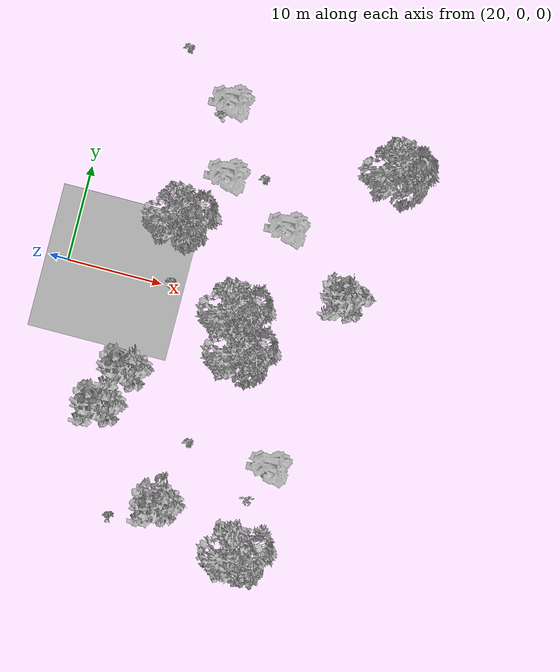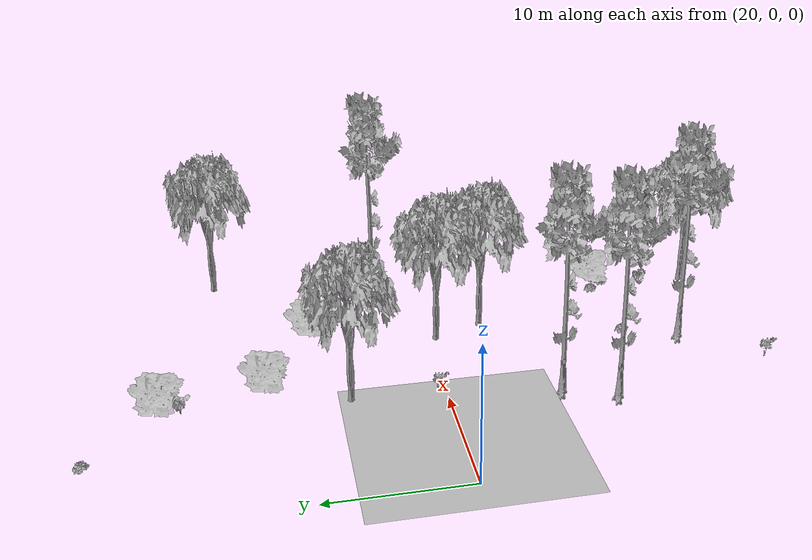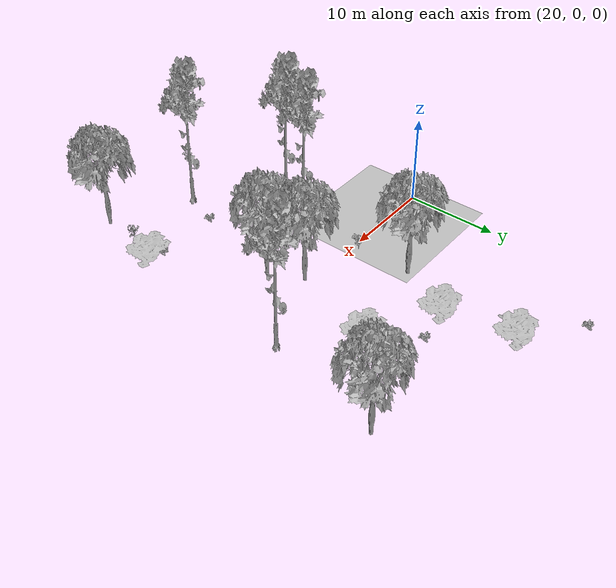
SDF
<sdf version="1.7">
 <world name="default">
  <model name="ground_plane">
   <static>1</static>
   <link name="link">
    <collision name="collision">
     <pose>25.0 0 0 0 -0 0</pose>
     <geometry><plane><normal>0 0 1</normal><size>50 50</size></plane></geometry>
     <surface><contact><ode><min_depth>0.01</min_depth><max_vel>0</max_vel></ode></contact></surface>
    </collision>
    <visual name="grass">
     <pose>25.0 0 0 0 -0 0</pose>
     <cast_shadows>0</cast_shadows>
     <geometry>
      <mesh>
       <scale>0.2731578947368421 0.2802702702702703 0.1</scale>
       <uri>file://grass_plane/meshes/grass_plane.dae</uri>
      </mesh>
     </geometry>
    </visual>
   </link>
  </model>
  <model name="Tree 0">
   <static>1</static>
   <pose>29.42567704624801 -8.101455197510514 0 1.57079 -0 0</pose>
   <link name="link">
    <collision name="collision">
     <geometry><mesh><scale>3.5 5 3.5</scale><uri>model://tree_9/meshes/tree_9.obj</uri></mesh></geometry>
    </collision>
    <visual name="visual">
     <geometry><mesh><scale>3.5 5 3.5</scale><uri>model://tree_9/meshes/tree_9.obj</uri></mesh></geometry>
    </visual>
   </link>
  </model>
  <model name="Tree 2">
   <static>1</static>
   <pose>41.17567704624801 8.565211469156154 0 1.57079 -0 0</pose>
   <link name="link">
    <collision name="collision">
     <geometry><mesh><scale>3 2 3</scale><uri>model://tree_3/meshes/tree_3.obj</uri></mesh></geometry>
    </collision>
    <visual name="visual">
     <geometry><mesh><scale>3 2 3</scale><uri>model://tree_3/meshes/tree_3.obj</uri></mesh></geometry>
    </visual>
   </link>
  </model>
  <model name="Tree 4">
   <static>1</static>
   <pose>35.30067704624801 -19.212566308621625 0 1.57079 -0 0</pose>
   <link name="link">
    <collision name="collision">
     <geometry><mesh><scale>3.5 5 3.5</scale><uri>model://tree_9/meshes/tree_9.obj</uri></mesh></geometry>
    </collision>
    <visual name="visual">
     <geometry><mesh><scale>3.5 5 3.5</scale><uri>model://tree_9/meshes/tree_9.obj</uri></mesh></geometry>
    </visual>
   </link>
  </model>
  <model name="Tree 6">
   <static>1</static>
   <pose>47.05067704624801 3.0096559136006 0 1.57079 -0 0</pose>
   <link name="link">
    <collision name="collision">
     <geometry><mesh><scale>3.5 5 3.5</scale><uri>model://tree_9/meshes/tree_9.obj</uri></mesh></geometry>
    </collision>
    <visual name="visual">
     <geometry><mesh><scale>3.5 5 3.5</scale><uri>model://tree_9/meshes/tree_9.obj</uri></mesh></geometry>
    </visual>
   </link>
  </model>
  <model name="Tree 8">
   <static>1</static>
   <pose>32.36317704624801 19.67632258026726 0 1.57079 -0 0</pose>
   <link name="link">
    <collision name="collision">
     <geometry><mesh><scale>3 2 3</scale><uri>model://tree_3/meshes/tree_3.obj</uri></mesh></geometry>
    </collision>
    <visual name="visual">
     <geometry><mesh><scale>3 2 3</scale><uri>model://tree_3/meshes/tree_3.obj</uri></mesh></geometry>
    </visual>
   </link>
  </model>
  <model name="Tree 10">
   <static>1</static>
   <pose>44.11317704624801 -22.916270012325327 0 1.57079 -0 0</pose>
   <link name="link">
    <collision name="collision">
     <geometry><mesh><scale>3.5 5 3.5</scale><uri>model://tree_2/meshes/tree_2.obj</uri></mesh></geometry>
    </collision>
    <visual name="visual">
     <geometry><mesh><scale>3.5 5 3.5</scale><uri>model://tree_2/meshes/tree_2.obj</uri></mesh></geometry>
    </visual>
   </link>
  </model>
  <model name="Tree 12">
   <static>1</static>
   <pose>38.23817704624801 -0.6940477901031059 0 1.57079 -0 0</pose>
   <link name="link">
    <collision name="collision">
     <geometry><mesh><scale>3.5 5 3.5</scale><uri>model://tree_2/meshes/tree_2.obj</uri></mesh></geometry>
    </collision>
    <visual name="visual">
     <geometry><mesh><scale>3.5 5 3.5</scale><uri>model://tree_2/meshes/tree_2.obj</uri></mesh></geometry>
    </visual>
   </link>
  </model>
  <model name="Tree 14">
   <static>1</static>
   <pose>49.98817704624801 15.972618876563551 0 1.57079 -0 0</pose>
   <link name="link">
    <collision name="collision">
     <geometry><mesh><scale>3.5 5 3.5</scale><uri>model://tree_2/meshes/tree_2.obj</uri></mesh></geometry>
    </collision>
    <visual name="visual">
     <geometry><mesh><scale>3.5 5 3.5</scale><uri>model://tree_2/meshes/tree_2.obj</uri></mesh></geometry>
    </visual>
   </link>
  </model>
  <model name="Tree 16">
   <static>1</static>
   <pose>27.95692704624801 -11.805158901214217 0 1.57079 -0 0</pose>
   <link name="link">
    <collision name="collision">
     <geometry><mesh><scale>3.5 5 3.5</scale><uri>model://tree_9/meshes/tree_9.obj</uri></mesh></geometry>
    </collision>
    <visual name="visual">
     <geometry><mesh><scale>3.5 5 3.5</scale><uri>model://tree_9/meshes/tree_9.obj</uri></mesh></geometry>
    </visual>
   </link>
  </model>
  <model name="Tree 18">
   <static>1</static>
   <pose>39.70692704624801 -4.397751493806808 0 1.57079 -0 0</pose>
   <link name="link">
    <collision name="collision">
     <geometry><mesh><scale>3.5 5 3.5</scale><uri>model://tree_2/meshes/tree_2.obj</uri></mesh></geometry>
    </collision>
    <visual name="visual">
     <geometry><mesh><scale>3.5 5 3.5</scale><uri>model://tree_2/meshes/tree_2.obj</uri></mesh></geometry>
    </visual>
   </link>
  </model>
  <model name="Tree 20">
   <static>1</static>
   <pose>33.83192704624801 12.268915172859856 0 1.57079 -0 0</pose>
   <link name="link">
    <collision name="collision">
     <geometry><mesh><scale>3 2 3</scale><uri>model://tree_3/meshes/tree_3.obj</uri></mesh></geometry>
    </collision>
    <visual name="visual">
     <geometry><mesh><scale>3 2 3</scale><uri>model://tree_3/meshes/tree_3.obj</uri></mesh></geometry>
    </visual>
   </link>
  </model>
  <model name="Tree 22">
   <static>1</static>
   <pose>45.58192704624801 -15.508862604917923 0 1.57079 -0 0</pose>
   <link name="link">
    <collision name="collision">
     <geometry><mesh><scale>3 2 3</scale><uri>model://tree_3/meshes/tree_3.obj</uri></mesh></geometry>
    </collision>
    <visual name="visual">
     <geometry><mesh><scale>3 2 3</scale><uri>model://tree_3/meshes/tree_3.obj</uri></mesh></geometry>
    </visual>
   </link>
  </model>
  <model name="Tree 24">
   <static>1</static>
   <pose>30.89442704624801 6.713359617304306 0 1.57079 -0 0</pose>
   <link name="link">
    <collision name="collision">
     <geometry><mesh><scale>3.5 5 3.5</scale><uri>model://tree_2/meshes/tree_2.obj</uri></mesh></geometry>
    </collision>
    <visual name="visual">
     <geometry><mesh><scale>3.5 5 3.5</scale><uri>model://tree_2/meshes/tree_2.obj</uri></mesh></geometry>
    </visual>
   </link>
  </model>
  <model name="Bush 1">
   <static>1</static>
   <pose>45.09408611213128 -16.294853630833877 0 1.57079 -0 0</pose>
   <link name="link">
    <collision name="collision">
     <geometry><mesh><scale>2 2 2</scale><uri>model://bush_2/meshes/bush_2.obj</uri></mesh></geometry>
     <surface><contact><collide_without_contact>false</collide_without_contact></contact></surface>
    </collision>
    <visual name="visual">
     <geometry><mesh><scale>2 2 2</scale><uri>model://bush_2/meshes/bush_2.obj</uri></mesh></geometry>
    </visual>
   </link>
  </model>
  <model name="Bush 2">
   <static>1</static>
   <pose>26.621957177572217 24.402056605110012 0 1.57079 -0 0</pose>
   <link name="link">
    <collision name="collision">
     <geometry><mesh><scale>2 2 2</scale><uri>model://bush_2/meshes/bush_2.obj</uri></mesh></geometry>
     <surface><contact><collide_without_contact>false</collide_without_contact></contact></surface>
    </collision>
    <visual name="visual">
     <geometry><mesh><scale>2 2 2</scale><uri>model://bush_2/meshes/bush_2.obj</uri></mesh></geometry>
    </visual>
   </link>
  </model>
  <model name="Bush 4">
   <static>1</static>
   <pose>30.98239497889666 0.5832661446088849 0 1.57079 -0 0</pose>
   <link name="link">
    <collision name="collision">
     <geometry><mesh><scale>2 2 2</scale><uri>model://bush_5/meshes/bush_5.obj</uri></mesh></geometry>
     <surface><contact><collide_without_contact>false</collide_without_contact></contact></surface>
    </collision>
    <visual name="visual">
     <geometry><mesh><scale>2 2 2</scale><uri>model://bush_5/meshes/bush_5.obj</uri></mesh></geometry>
    </visual>
   </link>
  </model>
  <model name="Bush 5">
   <static>1</static>
   <pose>31.739529359492423 18.365250748907073 0 1.57079 -0 0</pose>
   <link name="link">
    <collision name="collision">
     <geometry><mesh><scale>2 2 2</scale><uri>model://bush_0/meshes/bush_0.obj</uri></mesh></geometry>
     <surface><contact><collide_without_contact>false</collide_without_contact></contact></surface>
    </collision>
    <visual name="visual">
     <geometry><mesh><scale>2 2 2</scale><uri>model://bush_0/meshes/bush_0.obj</uri></mesh></geometry>
    </visual>
   </link>
  </model>
  <model name="Bush 6">
   <static>1</static>
   <pose>43.98102410796085 -15.025866993213889 0 1.57079 -0 0</pose>
   <link name="link">
    <collision name="collision">
     <geometry><mesh><scale>2 2 2</scale><uri>model://bush_2/meshes/bush_2.obj</uri></mesh></geometry>
     <surface><contact><collide_without_contact>false</collide_without_contact></contact></surface>
    </collision>
    <visual name="visual">
     <geometry><mesh><scale>2 2 2</scale><uri>model://bush_2/meshes/bush_2.obj</uri></mesh></geometry>
    </visual>
   </link>
  </model>
  <model name="Bush 8">
   <static>1</static>
   <pose>36.815655630561864 -15.225309750957978 0 1.57079 -0 0</pose>
   <link name="link">
    <collision name="collision">
     <geometry><mesh><scale>2 2 2</scale><uri>model://bush_2/meshes/bush_2.obj</uri></mesh></geometry>
     <surface><contact><collide_without_contact>false</collide_without_contact></contact></surface>
    </collision>
    <visual name="visual">
     <geometry><mesh><scale>2 2 2</scale><uri>model://bush_2/meshes/bush_2.obj</uri></mesh></geometry>
    </visual>
   </link>
  </model>
  <model name="Bush 15">
   <static>1</static>
   <pose>30.814053249654055 -24.24439524202339 0 1.57079 -0 0</pose>
   <link name="link">
    <collision name="collision">
     <geometry><mesh><scale>2 2 2</scale><uri>model://bush_5/meshes/bush_5.obj</uri></mesh></geometry>
     <surface><contact><collide_without_contact>false</collide_without_contact></contact></surface>
    </collision>
    <visual name="visual">
     <geometry><mesh><scale>2 2 2</scale><uri>model://bush_5/meshes/bush_5.obj</uri></mesh></geometry>
    </visual>
   </link>
  </model>
  <model name="Bush 16">
   <static>1</static>
   <pose>37.61739139556656 13.18354943902105 0 1.57079 -0 0</pose>
   <link name="link">
    <collision name="collision">
     <geometry><mesh><scale>2 2 2</scale><uri>model://bush_2/meshes/bush_2.obj</uri></mesh></geometry>
     <surface><contact><collide_without_contact>false</collide_without_contact></contact></surface>
    </collision>
    <visual name="visual">
     <geometry><mesh><scale>2 2 2</scale><uri>model://bush_2/meshes/bush_2.obj</uri></mesh></geometry>
    </visual>
   </link>
  </model>
  <model name="Bush 17">
   <static>1</static>
   <pose>44.15899723701478 -19.377368698638918 0 1.57079 -0 0</pose>
   <link name="link">
    <collision name="collision">
     <geometry><mesh><scale>2 2 2</scale><uri>model://bush_4/meshes/bush_4.obj</uri></mesh></geometry>
     <surface><contact><collide_without_contact>false</collide_without_contact></contact></surface>
    </collision>
    <visual name="visual">
     <geometry><mesh><scale>2 2 2</scale><uri>model://bush_4/meshes/bush_4.obj</uri></mesh></geometry>
    </visual>
   </link>
  </model>
 </world>
</sdf>
